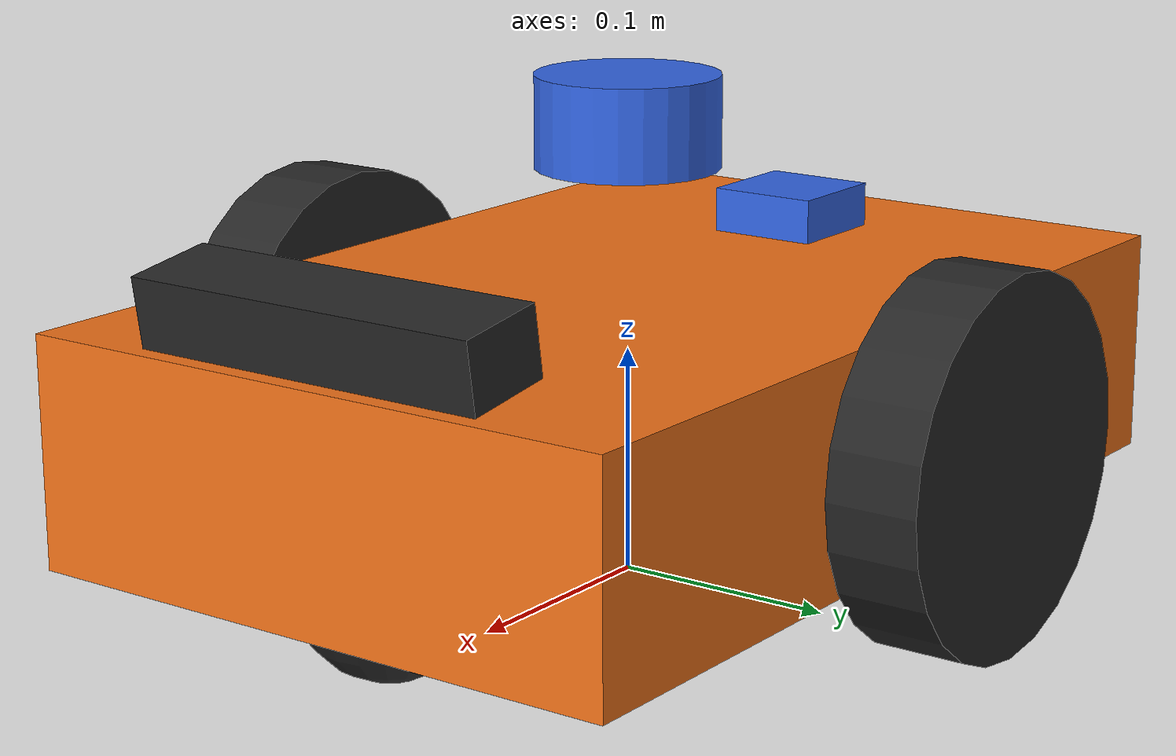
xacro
<?xml version="1.0"?>
<robot name="rover" xmlns:xacro="http://www.ros.org/wiki/xacro">

  <!-- ===== Geometry (m, kg) ===== -->
  <xacro:property name="base_l" value="0.42"/>
  <xacro:property name="base_w" value="0.28"/>
  <xacro:property name="base_h" value="0.10"/>
  <xacro:property name="base_m" value="5.0"/>
  <xacro:property name="wheel_r" value="0.08"/>
  <xacro:property name="wheel_w" value="0.04"/>
  <xacro:property name="wheel_m" value="0.5"/>
  <xacro:property name="wheel_y" value="${base_w/2 + wheel_w/2 + 0.01}"/>
  <xacro:property name="caster_r" value="0.04"/>
  <xacro:property name="caster_x" value="0.16"/>

  <material name="body"><color rgba="0.95 0.45 0.10 1"/></material>
  <material name="dark"><color rgba="0.15 0.15 0.15 1"/></material>
  <material name="sensor"><color rgba="0.20 0.40 0.90 1"/></material>

  <!-- ===== Inertia macros ===== -->
  <xacro:macro name="box_inertia" params="m x y z">
    <inertial>
      <mass value="${m}"/>
      <inertia ixx="${m*(y*y+z*z)/12}" ixy="0" ixz="0"
               iyy="${m*(x*x+z*z)/12}" iyz="0" izz="${m*(x*x+y*y)/12}"/>
    </inertial>
  </xacro:macro>
  <xacro:macro name="cyl_inertia" params="m r h">
    <inertial>
      <mass value="${m}"/>
      <inertia ixx="${m*(3*r*r+h*h)/12}" ixy="0" ixz="0"
               iyy="${m*(3*r*r+h*h)/12}" iyz="0" izz="${m*r*r/2}"/>
    </inertial>
  </xacro:macro>
  <xacro:macro name="sphere_inertia" params="m r">
    <inertial>
      <mass value="${m}"/>
      <inertia ixx="${2*m*r*r/5}" ixy="0" ixz="0"
               iyy="${2*m*r*r/5}" iyz="0" izz="${2*m*r*r/5}"/>
    </inertial>
  </xacro:macro>

  <!-- ===== Base ===== -->
  <link name="base_footprint"/>
  <link name="base_link">
    <visual>
      <geometry><box size="${base_l} ${base_w} ${base_h}"/></geometry>
      <material name="body"/>
    </visual>
    <collision>
      <geometry><box size="${base_l} ${base_w} ${base_h}"/></geometry>
    </collision>
    <xacro:box_inertia m="${base_m}" x="${base_l}" y="${base_w}" z="${base_h}"/>
  </link>
  <joint name="base_joint" type="fixed">
    <parent link="base_footprint"/>
    <child link="base_link"/>
    <origin xyz="0 0 ${wheel_r}" rpy="0 0 0"/>
  </joint>

  <!-- ===== Drive wheels ===== -->
  <xacro:macro name="wheel" params="side y">
    <link name="${side}_wheel_link">
      <visual>
        <geometry><cylinder radius="${wheel_r}" length="${wheel_w}"/></geometry>
        <material name="dark"/>
      </visual>
      <collision>
        <geometry><cylinder radius="${wheel_r}" length="${wheel_w}"/></geometry>
      </collision>
      <xacro:cyl_inertia m="${wheel_m}" r="${wheel_r}" h="${wheel_w}"/>
    </link>
    <joint name="${side}_wheel_joint" type="continuous">
      <parent link="base_link"/>
      <child link="${side}_wheel_link"/>
      <origin xyz="0 ${y} 0" rpy="${-pi/2} 0 0"/>
      <axis xyz="0 0 1"/>
    </joint>
    <gazebo reference="${side}_wheel_link">
      <mu1>1.0</mu1>
      <mu2>1.0</mu2>
    </gazebo>
  </xacro:macro>
  <xacro:wheel side="left" y="${wheel_y}"/>
  <xacro:wheel side="right" y="${-wheel_y}"/>

  <!-- ===== Frictionless casters ===== -->
  <xacro:macro name="caster" params="name x">
    <link name="${name}_caster_link">
      <visual>
        <geometry><sphere radius="${caster_r}"/></geometry>
        <material name="dark"/>
      </visual>
      <collision>
        <geometry><sphere radius="${caster_r}"/></geometry>
      </collision>
      <xacro:sphere_inertia m="0.1" r="${caster_r}"/>
    </link>
    <joint name="${name}_caster_joint" type="fixed">
      <parent link="base_link"/>
      <child link="${name}_caster_link"/>
      <origin xyz="${x} 0 ${caster_r - wheel_r}" rpy="0 0 0"/>
    </joint>
    <gazebo reference="${name}_caster_link">
      <mu1>0.0</mu1>
      <mu2>0.0</mu2>
    </gazebo>
  </xacro:macro>
  <xacro:caster name="front" x="${caster_x}"/>
  <xacro:caster name="rear" x="${-caster_x}"/>

  <!-- ===== 2D LiDAR: scan plane 0.20 m above ground ===== -->
  <link name="lidar_link">
    <visual>
      <geometry><cylinder radius="0.04" length="0.04"/></geometry>
      <material name="sensor"/>
    </visual>
    <xacro:cyl_inertia m="0.1" r="0.04" h="0.04"/>
  </link>
  <joint name="lidar_joint" type="fixed">
    <parent link="base_link"/>
    <child link="lidar_link"/>
    <origin xyz="0 0 ${base_h/2 + 0.07}" rpy="0 0 0"/>
  </joint>
  <gazebo reference="lidar_link">
    <sensor name="lidar" type="gpu_lidar">
      <always_on>true</always_on>
      <visualize>false</visualize>
      <update_rate>10</update_rate>
      <topic>scan</topic>
      <gz_frame_id>lidar_link</gz_frame_id>
      <lidar>
        <scan>
          <horizontal>
            <samples>360</samples>
            <resolution>1</resolution>
            <min_angle>-3.14159</min_angle>
            <max_angle>3.14159</max_angle>
          </horizontal>
        </scan>
        <range>
          <min>0.12</min>
          <max>10.0</max>
          <resolution>0.01</resolution>
        </range>
        <noise>
          <type>gaussian</type>
          <mean>0.0</mean>
          <stddev>0.01</stddev>
        </noise>
      </lidar>
    </sensor>
  </gazebo>

  <!-- ===== Depth camera, Orbbec Astra-like: HFOV 60 deg, depth 0.6-8 m ===== -->
  <!-- Pitched 0.15 rad down so it sees obstacles below the lidar plane -->
  <link name="camera_link">
    <visual>
      <geometry><box size="0.04 0.165 0.03"/></geometry>
      <material name="dark"/>
    </visual>
    <xacro:box_inertia m="0.1" x="0.04" y="0.165" z="0.03"/>
  </link>
  <joint name="camera_joint" type="fixed">
    <parent link="base_link"/>
    <child link="camera_link"/>
    <origin xyz="${base_l/2 - 0.02} 0 ${base_h/2 + 0.02}" rpy="0 0.15 0"/>
  </joint>
  <gazebo reference="camera_link">
    <sensor name="astra" type="rgbd_camera">
      <always_on>true</always_on>
      <update_rate>10</update_rate>
      <topic>camera</topic>
      <gz_frame_id>camera_link</gz_frame_id>
      <camera>
        <horizontal_fov>1.0472</horizontal_fov>
        <image>
          <width>320</width>
          <height>240</height>
          <format>R8G8B8</format>
        </image>
        <clip>
          <near>0.05</near>
          <far>10.0</far>
        </clip>
        <depth_camera>
          <clip>
            <near>0.6</near>
            <far>8.0</far>
          </clip>
        </depth_camera>
      </camera>
    </sensor>
  </gazebo>

  <!-- ===== IMU ===== -->
  <link name="imu_link">
    <xacro:box_inertia m="0.01" x="0.02" y="0.02" z="0.01"/>
  </link>
  <joint name="imu_joint" type="fixed">
    <parent link="base_link"/>
    <child link="imu_link"/>
    <origin xyz="0 0 0" rpy="0 0 0"/>
  </joint>
  <gazebo reference="imu_link">
    <sensor name="imu" type="imu">
      <always_on>true</always_on>
      <update_rate>50</update_rate>
      <topic>imu</topic>
      <gz_frame_id>imu_link</gz_frame_id>
    </sensor>
  </gazebo>

  <!-- ===== GPS (Gazebo NavSat = analog of gazebo_ros_gps) ===== -->
  <link name="gps_link">
    <visual>
      <geometry><box size="0.05 0.05 0.02"/></geometry>
      <material name="sensor"/>
    </visual>
    <xacro:box_inertia m="0.05" x="0.05" y="0.05" z="0.02"/>
  </link>
  <joint name="gps_joint" type="fixed">
    <parent link="base_link"/>
    <child link="gps_link"/>
    <origin xyz="-0.13 0 ${base_h/2 + 0.01}" rpy="0 0 0"/>
  </joint>
  <gazebo reference="gps_link">
    <sensor name="gps" type="navsat">
      <always_on>true</always_on>
      <update_rate>5</update_rate>
      <topic>gps/fix</topic>
      <gz_frame_id>gps_link</gz_frame_id>
    </sensor>
  </gazebo>

  <!-- ===== Gazebo systems: diff drive + joint states ===== -->
  <gazebo>
    <plugin filename="gz-sim-diff-drive-system" name="gz::sim::systems::DiffDrive">
      <left_joint>left_wheel_joint</left_joint>
      <right_joint>right_wheel_joint</right_joint>
      <wheel_separation>${2*wheel_y}</wheel_separation>
      <wheel_radius>${wheel_r}</wheel_radius>
      <max_linear_acceleration>1.0</max_linear_acceleration>
      <topic>cmd_vel</topic>
      <odom_topic>odom</odom_topic>
      <tf_topic>odom_tf</tf_topic>
      <frame_id>odom</frame_id>
      <child_frame_id>base_footprint</child_frame_id>
      <odom_publish_frequency>30</odom_publish_frequency>
    </plugin>
    <plugin filename="gz-sim-joint-state-publisher-system" name="gz::sim::systems::JointStatePublisher">
      <topic>joint_states</topic>
    </plugin>
  </gazebo>

</robot>
